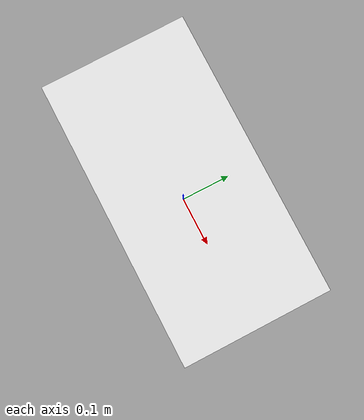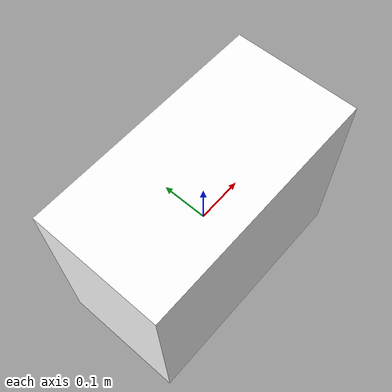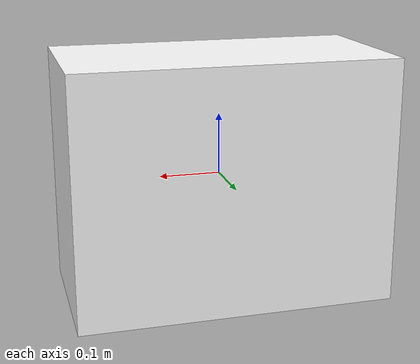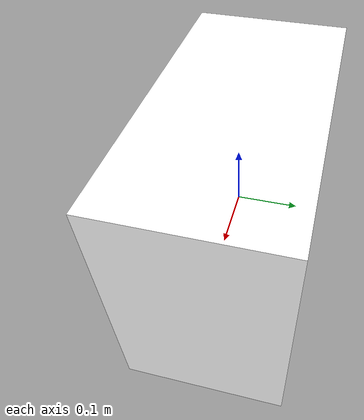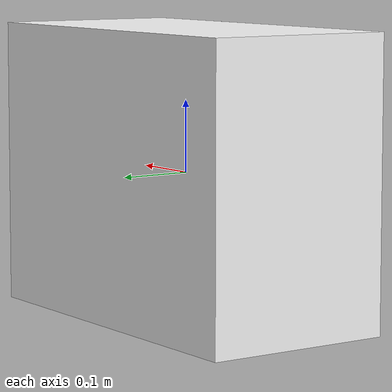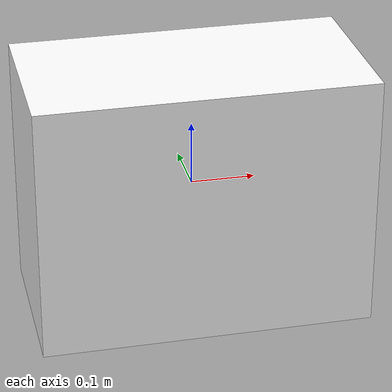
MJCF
<mujoco>
  <compiler angle="radian" assetdir="assets" autolimits="true"/>

  <asset>

    <!-- Textures -->
    <texture type="2d" colorspace="sRGB" name="carton_05_UV" file="carton_05_UV.png"/>

    <!-- Materials -->
    <material name="MI_carton_05" rgba="1 1 1 1" reflectance="0.5" metallic="0.0" roughness="0.5">
      <layer texture="carton_05_UV" role="rgb"/>
    </material>

    <!-- Visual meshes -->
    <mesh class="visual" name="V_carton_05" file="V_carton_05.obj"/>

  </asset>

  <default>
      <default class="visual">
        <geom type="mesh" contype="0" conaffinity="0" group="2" density="0"/>
      </default>
  </default>

  <worldbody>

    <body name="B_carton_05" pos="0.0 0.0 0.0" quat="1.0 0.0 0.0 0.0">
      <geom class="visual" mesh="V_carton_05" pos="0.0 0.0 0.0" quat="1.0 0.0 0.0 0.0" material="MI_carton_05"/>
    </body>
  </worldbody>

</mujoco>
